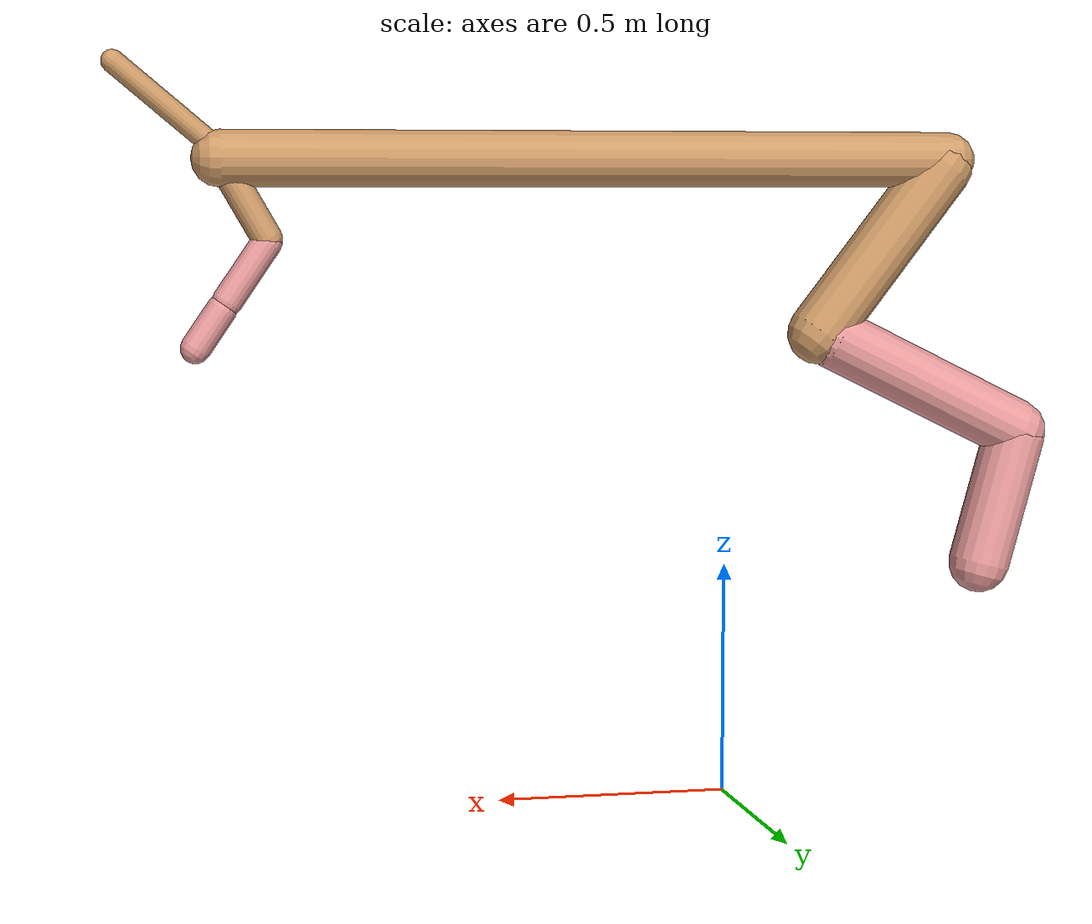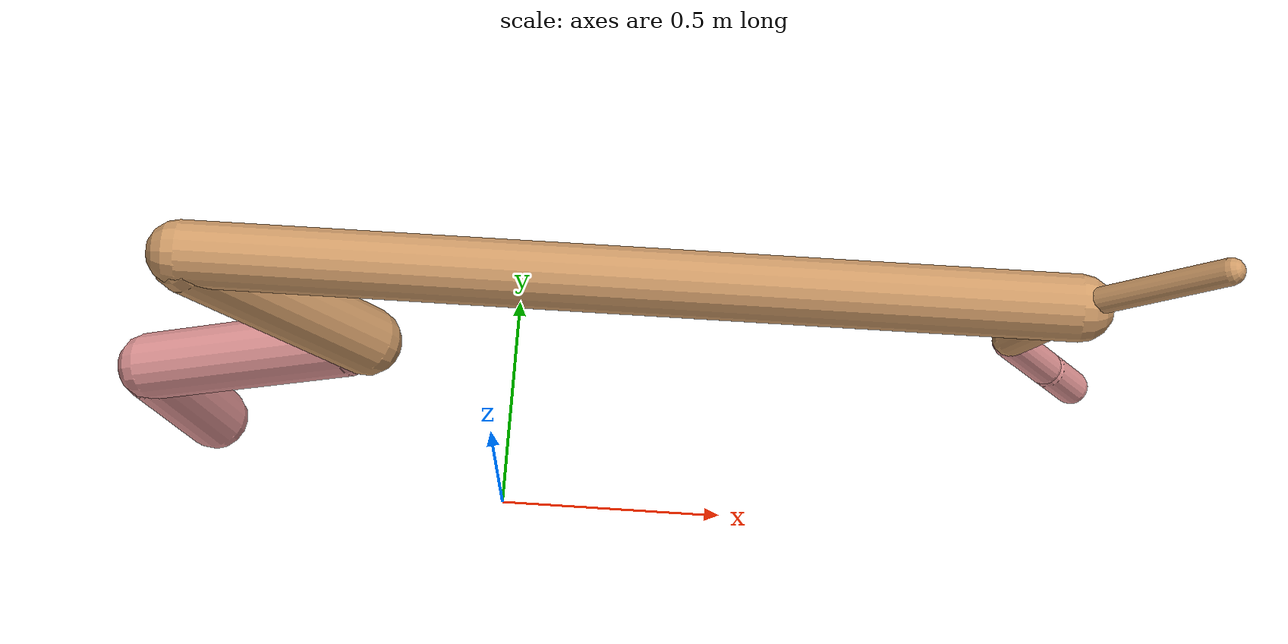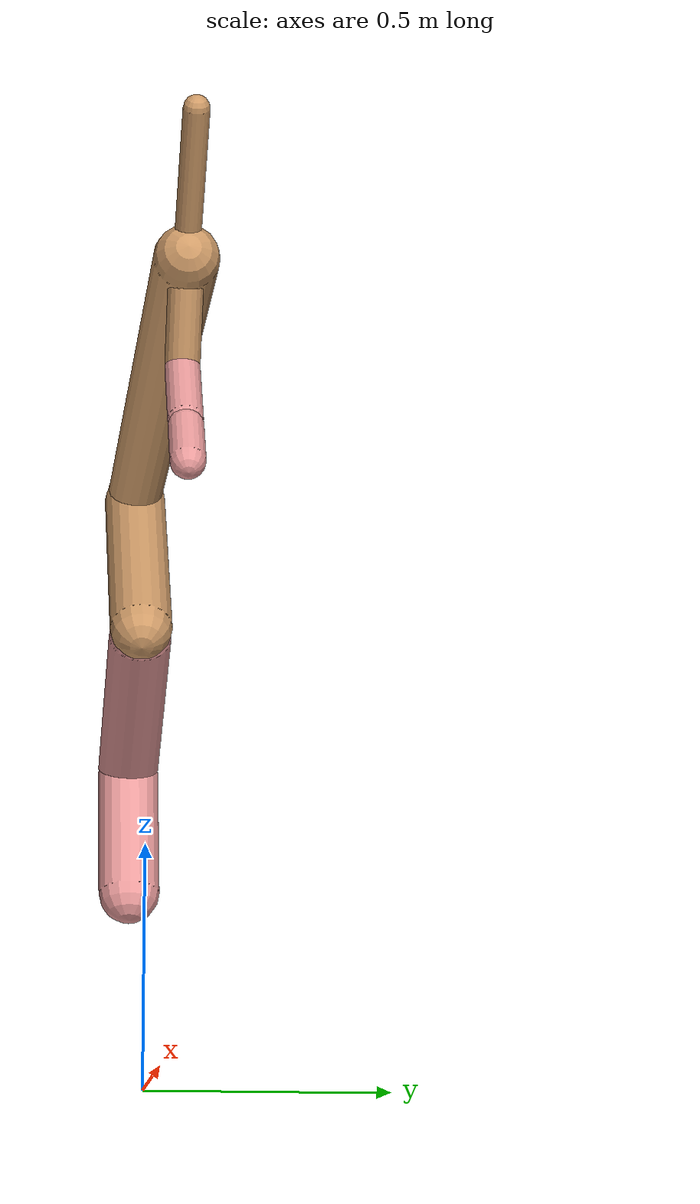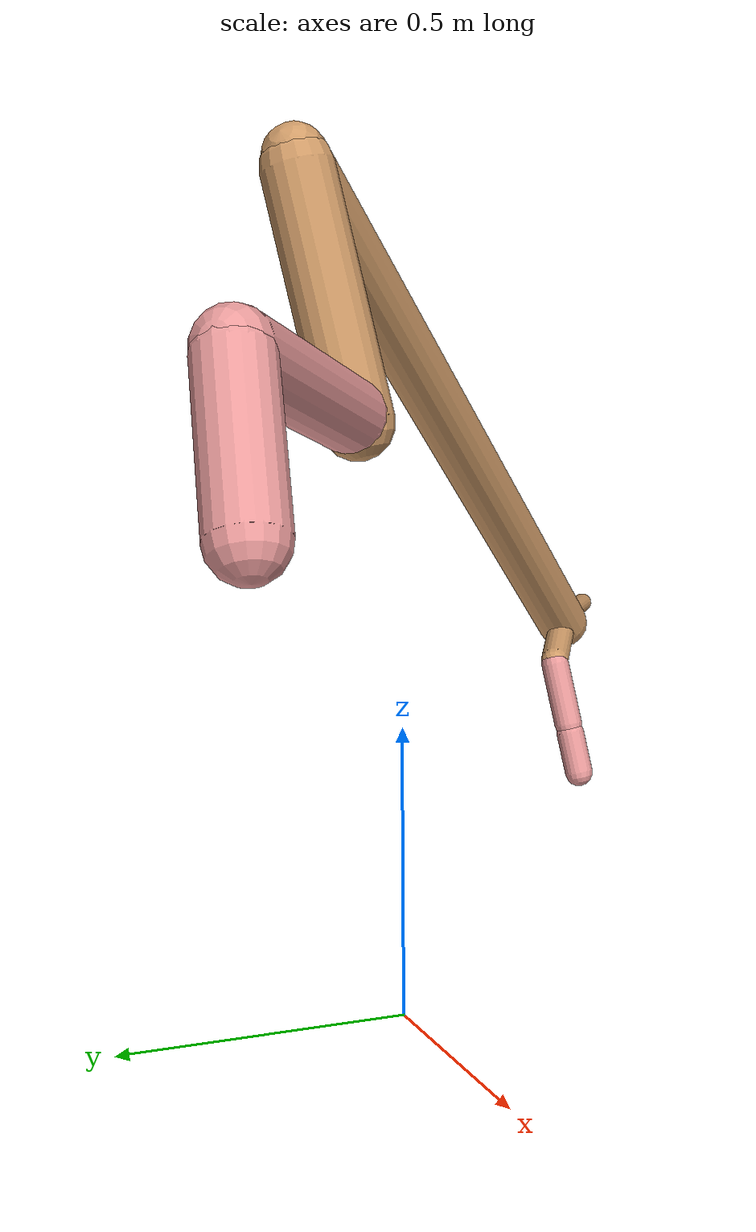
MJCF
<mujoco model="cheetah">
  <compiler angle="radian" coordinate="local" inertiafromgeom="true" settotalmass="14" />
  <default>
    <joint armature=".1" damping=".01" limited="true" solimplimit="0 .8 .03" solreflimit=".02 1" stiffness="8" />
    <geom conaffinity="0" condim="3" contype="1" friction="0.8 .1 .1" rgba="0.8 0.6 .4 1" solimp="0.0 0.8 0.01" solref="0.02 1" />
    <motor ctrllimited="true" ctrlrange="-1 1" />
  </default>
  <size nstack="300000" nuser_geom="1" />
  <option gravity="0 0 -9.81" timestep="0.01" />
  <worldbody>
    <body name="torso" pos="0.0 0.0 1.3771297487567575">
      <joint armature="0" axis="1 0 0" damping="0" limited="false" name="ignorex" pos="0 0 0" stiffness="0" type="slide" />
      <joint armature="0" axis="0 0 1" damping="0" limited="false" name="ignorez" pos="0 0 0" stiffness="0" type="slide" />
      <joint armature="0" axis="0 1 0" damping="0" limited="false" name="ignorey" pos="0 0 0" stiffness="0" type="hinge" />
      <geom fromto="-0.5 0.0 0.0 1.0803926450763375 0.0 0.0" name="torso" size="0.05988153141367794" type="capsule" />
      <geom axisangle="0 1 0 .87" name="head" pos="1.1803926450763376 0.0 0.1" size="0.023840683847513512 0.15" type="capsule" />

      <body name="bthigh" pos="-.5 0 0">
        <joint axis="0 1 0" damping="6" name="bthigh" pos="0 0 0" range="-.52 1.05" stiffness="240" type="hinge" />
        <geom axisangle="0 1 0 -3.8" name="bthigh" pos="0.1507319726056986 0.0 -0.19595156438740818" size="0.06709503244490693 0.22820662166926256" type="capsule" />
        <body name="bshin" pos="0.26146394521139715 0.0 -0.38190312877481636">
          <joint axis="0 1 0" damping="4.5" name="bshin" pos="0 0 0" range="-.785 .785" stiffness="180" type="hinge" />
          <geom axisangle="0 1 0 -2.03" name="bshin" pos="-0.21698854988851513 0.0 -0.10849427494425756" rgba="0.9 0.6 0.6 1" size="0.06709503244490693 0.2360758155199268" type="capsule" />
          <body name="bfoot" pos="-0.43397709977703025 0.0 -0.21698854988851513">
            <joint axis="0 1 0" damping="3" name="bfoot" pos="0 0 0" range="-.4 .785" stiffness="120" type="hinge" />
            <geom axisangle="0 1 0 -.27" name="bfoot" pos="0.04593788634683064 0.0 -0.14853249918808575" rgba="0.9 0.6 0.6 1" size="0.06709503244490693 0.14794084439248747" type="capsule" />
            <inertial mass="10" />
          </body>
        </body>
      </body>
      <body name="fthigh" pos="1.0803926450763375 0.0 0.0">
        <joint axis="0 1 0" damping="4.5" name="fthigh" pos="0 0 0" range="-1.5 0.8" stiffness="180" type="hinge" />
        <geom axisangle="0 1 0 .52" name="fthigh" pos="-0.04989554608158897 0.0 -0.0855352218541525" size="0.0322 0.0931" type="capsule" />
        <body name="fshin" pos="-0.09979109216317794 0.0 -0.171070443708305">
          <joint axis="0 1 0" damping="3" name="fshin" pos="0 0 0" range="-1.2 1.1" stiffness="120" type="hinge" />
          <geom axisangle="0 1 0 -.6" name="fshin" pos="0.046381400387749405 0.0 -0.06422040053688378" rgba="0.9 0.6 0.6 1" size="0.0322 0.07419999999999999" type="capsule" />
          <body name="ffoot" pos="0.09276280077549881 0.0 -0.12844080107376757">
            <joint axis="0 1 0" damping="1.5" name="ffoot" pos="0 0 0" range="-3.1 -0.3" stiffness="60" type="hinge" />
            <geom axisangle="0 1 0 -.6" name="ffoot" pos="0.033644090582416526 0.0 -0.05233525201709238" rgba="0.9 0.6 0.6 1" size="0.0322 0.049" type="capsule" />
            <inertial mass="10" />
          </body>
        </body>
      </body>
    </body>
  </worldbody>
  <actuator>
    <motor gear="120" joint="bthigh" name="bthigh" />
    <motor gear="90" joint="bshin" name="bshin" />
    <motor gear="60" joint="bfoot" name="bfoot" />
    <motor gear="120" joint="fthigh" name="fthigh" />
    <motor gear="60" joint="fshin" name="fshin" />
    <motor gear="30" joint="ffoot" name="ffoot" />
  </actuator>
</mujoco>
